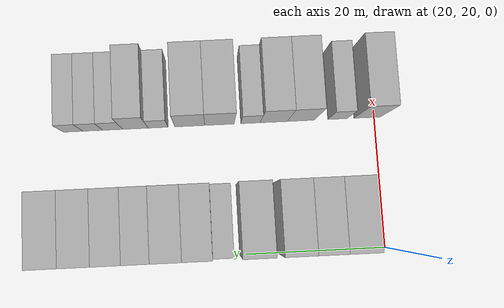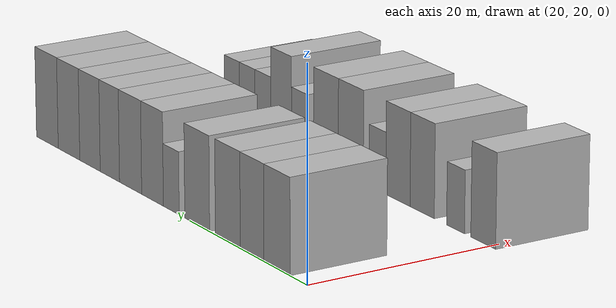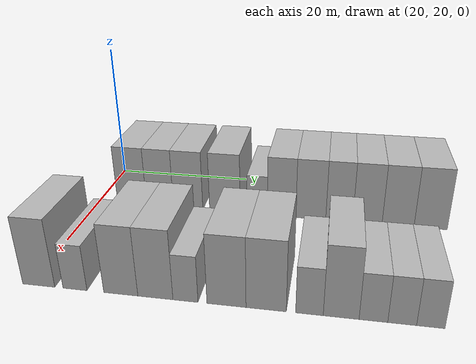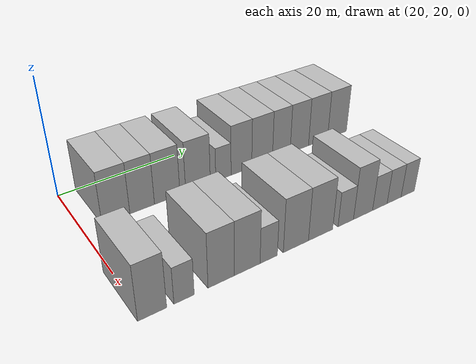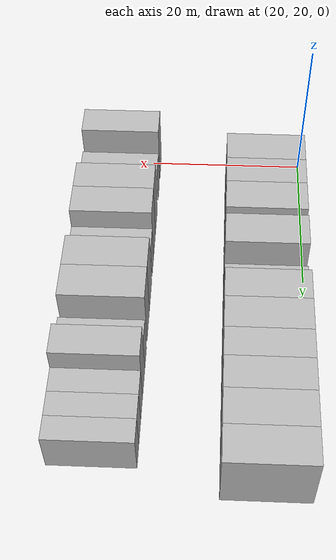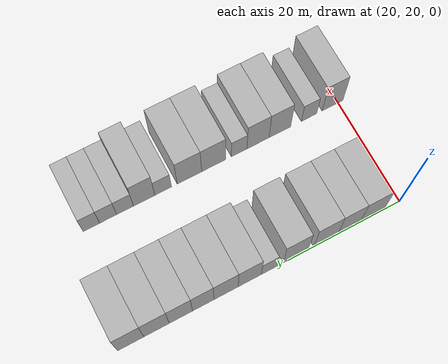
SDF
<sdf version="1.6">
 <world name="default">
  <model name="building_39">
   <static>1</static>
   <pose>25.0000 25.0117 0 0.000000 0.000000 0.000000</pose>
   <link name="link">
    <pose>0 0 4.50 0 0 0</pose>
    <collision name="collision"><geometry><box><size>10.0000 4.3616 9.0000</size></box></geometry></collision>
    <visual name="visual">
     <cast_shadows>0</cast_shadows>
     <geometry><box><size>10.0000 4.3616 9.0000</size></box></geometry>
     <material>
      <script>
       <uri>model://HANNAS_wall/materials/scripts</uri>
       <uri>model://HANNAS_wall/materials/textures</uri>
       <name>vrc/HANNAS_wall</name>
      </script>
     </material>
    </visual>
   </link>
  </model>
  <model name="building_40">
   <static>1</static>
   <pose>25.0000 29.1984 0 0.000000 0.000000 0.000000</pose>
   <link name="link">
    <pose>0 0 4.50 0 0 0</pose>
    <collision name="collision"><geometry><box><size>10.0000 4.0117 9.0000</size></box></geometry></collision>
    <visual name="visual">
     <cast_shadows>0</cast_shadows>
     <geometry><box><size>10.0000 4.0117 9.0000</size></box></geometry>
     <material>
      <script>
       <uri>model://HANNAS_wall/materials/scripts</uri>
       <uri>model://HANNAS_wall/materials/textures</uri>
       <name>vrc/HANNAS_wall</name>
      </script>
     </material>
    </visual>
   </link>
  </model>
  <model name="building_41">
   <static>1</static>
   <pose>25.0000 33.3631 0 0.000000 0.000000 0.000000</pose>
   <link name="link">
    <pose>0 0 4.50 0 0 0</pose>
    <collision name="collision"><geometry><box><size>10.0000 4.3178 9.0000</size></box></geometry></collision>
    <visual name="visual">
     <cast_shadows>0</cast_shadows>
     <geometry><box><size>10.0000 4.3178 9.0000</size></box></geometry>
     <material>
      <script>
       <uri>model://HANNAS_wall/materials/scripts</uri>
       <uri>model://HANNAS_wall/materials/textures</uri>
       <name>vrc/HANNAS_wall</name>
      </script>
     </material>
    </visual>
   </link>
  </model>
  <model name="building_42">
   <static>1</static>
   <pose>25.0000 38.7212 0 0.000000 0.000000 0.000000</pose>
   <link name="link">
    <pose>0 0 4.50 0 0 0</pose>
    <collision name="collision"><geometry><box><size>10.0000 4.3984 9.0000</size></box></geometry></collision>
    <visual name="visual">
     <cast_shadows>0</cast_shadows>
     <geometry><box><size>10.0000 4.3984 9.0000</size></box></geometry>
     <material>
      <script>
       <uri>model://HANNAS_wall/materials/scripts</uri>
       <uri>model://HANNAS_wall/materials/textures</uri>
       <name>vrc/HANNAS_wall</name>
      </script>
     </material>
    </visual>
   </link>
  </model>
  <model name="building_43">
   <static>1</static>
   <pose>25.0000 43.3477 0 0.000000 0.000000 0.000000</pose>
   <link name="link">
    <pose>0 0 3.00 0 0 0</pose>
    <collision name="collision"><geometry><box><size>10.0000 2.8546 6.0000</size></box></geometry></collision>
    <visual name="visual">
     <cast_shadows>0</cast_shadows>
     <geometry><box><size>10.0000 2.8546 6.0000</size></box></geometry>
     <material>
      <script>
       <uri>model://HANNAS_wall/materials/scripts</uri>
       <uri>model://HANNAS_wall/materials/textures</uri>
       <name>vrc/HANNAS_wall</name>
      </script>
     </material>
    </visual>
   </link>
  </model>
  <model name="building_44">
   <static>1</static>
   <pose>25.0000 46.7679 0 0.000000 0.000000 0.000000</pose>
   <link name="link">
    <pose>0 0 4.50 0 0 0</pose>
    <collision name="collision"><geometry><box><size>10.0000 3.9857 9.0000</size></box></geometry></collision>
    <visual name="visual">
     <cast_shadows>0</cast_shadows>
     <geometry><box><size>10.0000 3.9857 9.0000</size></box></geometry>
     <material>
      <script>
       <uri>model://HANNAS_wall/materials/scripts</uri>
       <uri>model://HANNAS_wall/materials/textures</uri>
       <name>vrc/HANNAS_wall</name>
      </script>
     </material>
    </visual>
   </link>
  </model>
  <model name="building_45">
   <static>1</static>
   <pose>25.0000 50.8292 0 0.000000 0.000000 0.000000</pose>
   <link name="link">
    <pose>0 0 4.50 0 0 0</pose>
    <collision name="collision"><geometry><box><size>10.0000 4.1369 9.0000</size></box></geometry></collision>
    <visual name="visual">
     <cast_shadows>0</cast_shadows>
     <geometry><box><size>10.0000 4.1369 9.0000</size></box></geometry>
     <material>
      <script>
       <uri>model://HANNAS_wall/materials/scripts</uri>
       <uri>model://HANNAS_wall/materials/textures</uri>
       <name>vrc/HANNAS_wall</name>
      </script>
     </material>
    </visual>
   </link>
  </model>
  <model name="building_46">
   <static>1</static>
   <pose>25.0000 54.7279 0 0.000000 0.000000 0.000000</pose>
   <link name="link">
    <pose>0 0 4.50 0 0 0</pose>
    <collision name="collision"><geometry><box><size>10.0000 3.6604 9.0000</size></box></geometry></collision>
    <visual name="visual">
     <cast_shadows>0</cast_shadows>
     <geometry><box><size>10.0000 3.6604 9.0000</size></box></geometry>
     <material>
      <script>
       <uri>model://HANNAS_wall/materials/scripts</uri>
       <uri>model://HANNAS_wall/materials/textures</uri>
       <name>vrc/HANNAS_wall</name>
      </script>
     </material>
    </visual>
   </link>
  </model>
  <model name="building_47">
   <static>1</static>
   <pose>25.0000 58.5285 0 0.000000 0.000000 0.000000</pose>
   <link name="link">
    <pose>0 0 4.50 0 0 0</pose>
    <collision name="collision"><geometry><box><size>10.0000 3.9409 9.0000</size></box></geometry></collision>
    <visual name="visual">
     <cast_shadows>0</cast_shadows>
     <geometry><box><size>10.0000 3.9409 9.0000</size></box></geometry>
     <material>
      <script>
       <uri>model://HANNAS_wall/materials/scripts</uri>
       <uri>model://HANNAS_wall/materials/textures</uri>
       <name>vrc/HANNAS_wall</name>
      </script>
     </material>
    </visual>
   </link>
  </model>
  <model name="building_48">
   <static>1</static>
   <pose>25.0000 62.6112 0 0.000000 0.000000 0.000000</pose>
   <link name="link">
    <pose>0 0 4.50 0 0 0</pose>
    <collision name="collision"><geometry><box><size>10.0000 4.2244 9.0000</size></box></geometry></collision>
    <visual name="visual">
     <cast_shadows>0</cast_shadows>
     <geometry><box><size>10.0000 4.2244 9.0000</size></box></geometry>
     <material>
      <script>
       <uri>model://HANNAS_wall/materials/scripts</uri>
       <uri>model://HANNAS_wall/materials/textures</uri>
       <name>vrc/HANNAS_wall</name>
      </script>
     </material>
    </visual>
   </link>
  </model>
  <model name="building_49">
   <static>1</static>
   <pose>25.0000 66.8861 0 0.000000 0.000000 0.000000</pose>
   <link name="link">
    <pose>0 0 4.50 0 0 0</pose>
    <collision name="collision"><geometry><box><size>10.0000 4.3253 9.0000</size></box></geometry></collision>
    <visual name="visual">
     <cast_shadows>0</cast_shadows>
     <geometry><box><size>10.0000 4.3253 9.0000</size></box></geometry>
     <material>
      <script>
       <uri>model://HANNAS_wall/materials/scripts</uri>
       <uri>model://HANNAS_wall/materials/textures</uri>
       <name>vrc/HANNAS_wall</name>
      </script>
     </material>
    </visual>
   </link>
  </model>
  <model name="building_140">
   <static>1</static>
   <pose>44.0000 21.0249 0 0.000000 0.000000 0.000000</pose>
   <link name="link">
    <pose>0 0 4.50 0 0 0</pose>
    <collision name="collision"><geometry><box><size>10.0000 3.9184 9.0000</size></box></geometry></collision>
    <visual name="visual">
     <cast_shadows>0</cast_shadows>
     <geometry><box><size>10.0000 3.9184 9.0000</size></box></geometry>
     <material>
      <script>
       <uri>model://HANNAS_wall/materials/scripts</uri>
       <uri>model://HANNAS_wall/materials/textures</uri>
       <name>vrc/HANNAS_wall</name>
      </script>
     </material>
    </visual>
   </link>
  </model>
  <model name="building_141">
   <static>1</static>
   <pose>44.0000 25.4200 0 0.000000 0.000000 0.000000</pose>
   <link name="link">
    <pose>0 0 3.00 0 0 0</pose>
    <collision name="collision"><geometry><box><size>10.0000 2.8719 6.0000</size></box></geometry></collision>
    <visual name="visual">
     <cast_shadows>0</cast_shadows>
     <geometry><box><size>10.0000 2.8719 6.0000</size></box></geometry>
     <material>
      <script>
       <uri>model://HANNAS_wall/materials/scripts</uri>
       <uri>model://HANNAS_wall/materials/textures</uri>
       <name>vrc/HANNAS_wall</name>
      </script>
     </material>
    </visual>
   </link>
  </model>
  <model name="building_142">
   <static>1</static>
   <pose>44.0000 30.8511 0 0.000000 0.000000 0.000000</pose>
   <link name="link">
    <pose>0 0 4.50 0 0 0</pose>
    <collision name="collision"><geometry><box><size>10.0000 3.9902 9.0000</size></box></geometry></collision>
    <visual name="visual">
     <cast_shadows>0</cast_shadows>
     <geometry><box><size>10.0000 3.9902 9.0000</size></box></geometry>
     <material>
      <script>
       <uri>model://HANNAS_wall/materials/scripts</uri>
       <uri>model://HANNAS_wall/materials/textures</uri>
       <name>vrc/HANNAS_wall</name>
      </script>
     </material>
    </visual>
   </link>
  </model>
  <model name="building_143">
   <static>1</static>
   <pose>44.0000 34.8660 0 0.000000 0.000000 0.000000</pose>
   <link name="link">
    <pose>0 0 4.50 0 0 0</pose>
    <collision name="collision"><geometry><box><size>10.0000 4.0395 9.0000</size></box></geometry></collision>
    <visual name="visual">
     <cast_shadows>0</cast_shadows>
     <geometry><box><size>10.0000 4.0395 9.0000</size></box></geometry>
     <material>
      <script>
       <uri>model://HANNAS_wall/materials/scripts</uri>
       <uri>model://HANNAS_wall/materials/textures</uri>
       <name>vrc/HANNAS_wall</name>
      </script>
     </material>
    </visual>
   </link>
  </model>
  <model name="building_144">
   <static>1</static>
   <pose>44.0000 38.3028 0 0.000000 0.000000 0.000000</pose>
   <link name="link">
    <pose>0 0 3.00 0 0 0</pose>
    <collision name="collision"><geometry><box><size>10.0000 2.8341 6.0000</size></box></geometry></collision>
    <visual name="visual">
     <cast_shadows>0</cast_shadows>
     <geometry><box><size>10.0000 2.8341 6.0000</size></box></geometry>
     <material>
      <script>
       <uri>model://HANNAS_wall/materials/scripts</uri>
       <uri>model://HANNAS_wall/materials/textures</uri>
       <name>vrc/HANNAS_wall</name>
      </script>
     </material>
    </visual>
   </link>
  </model>
  <model name="building_145">
   <static>1</static>
   <pose>44.0000 42.8870 0 0.000000 0.000000 0.000000</pose>
   <link name="link">
    <pose>0 0 4.50 0 0 0</pose>
    <collision name="collision"><geometry><box><size>10.0000 4.3342 9.0000</size></box></geometry></collision>
    <visual name="visual">
     <cast_shadows>0</cast_shadows>
     <geometry><box><size>10.0000 4.3342 9.0000</size></box></geometry>
     <material>
      <script>
       <uri>model://HANNAS_wall/materials/scripts</uri>
       <uri>model://HANNAS_wall/materials/textures</uri>
       <name>vrc/HANNAS_wall</name>
      </script>
     </material>
    </visual>
   </link>
  </model>
  <model name="building_146">
   <static>1</static>
   <pose>44.0000 47.2398 0 0.000000 0.000000 0.000000</pose>
   <link name="link">
    <pose>0 0 4.50 0 0 0</pose>
    <collision name="collision"><geometry><box><size>10.0000 4.3713 9.0000</size></box></geometry></collision>
    <visual name="visual">
     <cast_shadows>0</cast_shadows>
     <geometry><box><size>10.0000 4.3713 9.0000</size></box></geometry>
     <material>
      <script>
       <uri>model://HANNAS_wall/materials/scripts</uri>
       <uri>model://HANNAS_wall/materials/textures</uri>
       <name>vrc/HANNAS_wall</name>
      </script>
     </material>
    </visual>
   </link>
  </model>
  <model name="building_147">
   <static>1</static>
   <pose>44.0000 51.8904 0 0.000000 0.000000 0.000000</pose>
   <link name="link">
    <pose>0 0 3.00 0 0 0</pose>
    <collision name="collision"><geometry><box><size>10.0000 2.9299 6.0000</size></box></geometry></collision>
    <visual name="visual">
     <cast_shadows>0</cast_shadows>
     <geometry><box><size>10.0000 2.9299 6.0000</size></box></geometry>
     <material>
      <script>
       <uri>model://HANNAS_wall/materials/scripts</uri>
       <uri>model://HANNAS_wall/materials/textures</uri>
       <name>vrc/HANNAS_wall</name>
      </script>
     </material>
    </visual>
   </link>
  </model>
  <model name="building_148">
   <static>1</static>
   <pose>44.0000 55.2260 0 0.000000 0.000000 0.000000</pose>
   <link name="link">
    <pose>0 0 4.50 0 0 0</pose>
    <collision name="collision"><geometry><box><size>10.0000 3.7413 9.0000</size></box></geometry></collision>
    <visual name="visual">
     <cast_shadows>0</cast_shadows>
     <geometry><box><size>10.0000 3.7413 9.0000</size></box></geometry>
     <material>
      <script>
       <uri>model://HANNAS_wall/materials/scripts</uri>
       <uri>model://HANNAS_wall/materials/textures</uri>
       <name>vrc/HANNAS_wall</name>
      </script>
     </material>
    </visual>
   </link>
  </model>
  <model name="building_149">
   <static>1</static>
   <pose>44.0000 58.5694 0 0.000000 0.000000 0.000000</pose>
   <link name="link">
    <pose>0 0 3.00 0 0 0</pose>
    <collision name="collision"><geometry><box><size>10.0000 2.9457 6.0000</size></box></geometry></collision>
    <visual name="visual">
     <cast_shadows>0</cast_shadows>
     <geometry><box><size>10.0000 2.9457 6.0000</size></box></geometry>
     <material>
      <script>
       <uri>model://HANNAS_wall/materials/scripts</uri>
       <uri>model://HANNAS_wall/materials/textures</uri>
       <name>vrc/HANNAS_wall</name>
      </script>
     </material>
    </visual>
   </link>
  </model>
  <model name="building_150">
   <static>1</static>
   <pose>44.0000 61.5038 0 0.000000 0.000000 0.000000</pose>
   <link name="link">
    <pose>0 0 3.00 0 0 0</pose>
    <collision name="collision"><geometry><box><size>10.0000 2.9231 6.0000</size></box></geometry></collision>
    <visual name="visual">
     <cast_shadows>0</cast_shadows>
     <geometry><box><size>10.0000 2.9231 6.0000</size></box></geometry>
     <material>
      <script>
       <uri>model://HANNAS_wall/materials/scripts</uri>
       <uri>model://HANNAS_wall/materials/textures</uri>
       <name>vrc/HANNAS_wall</name>
      </script>
     </material>
    </visual>
   </link>
  </model>
  <model name="building_151">
   <static>1</static>
   <pose>44.0000 64.3848 0 0.000000 0.000000 0.000000</pose>
   <link name="link">
    <pose>0 0 3.00 0 0 0</pose>
    <collision name="collision"><geometry><box><size>10.0000 2.8388 6.0000</size></box></geometry></collision>
    <visual name="visual">
     <cast_shadows>0</cast_shadows>
     <geometry><box><size>10.0000 2.8388 6.0000</size></box></geometry>
     <material>
      <script>
       <uri>model://HANNAS_wall/materials/scripts</uri>
       <uri>model://HANNAS_wall/materials/textures</uri>
       <name>vrc/HANNAS_wall</name>
      </script>
     </material>
    </visual>
   </link>
  </model>
 </world>
</sdf>
